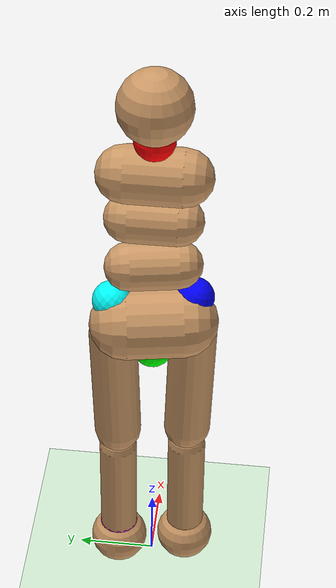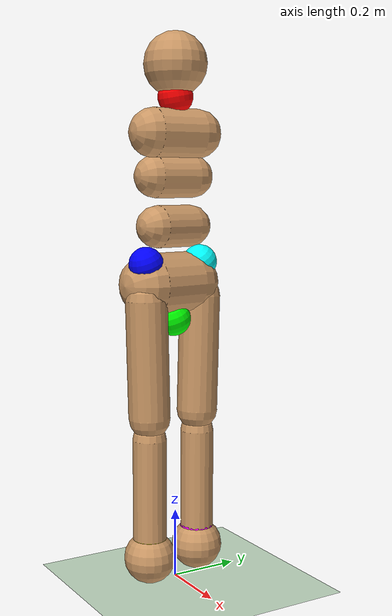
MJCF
<mujoco model="humanoid">
    <compiler angle="degree" inertiafromgeom="true"/>
    <default>
        <joint armature="1" damping="1" limited="true"/>
        <geom conaffinity="1" condim="1" contype="1" margin="0.001" material="geom" rgba="0.8 0.6 .4 1"/>
        <motor ctrllimited="true" ctrlrange="-.4 .4"/>
    </default>
    <size nkey="5" nuser_geom="1"/>
    <visual>
        <map fogend="5" fogstart="3"/>
    </visual>
    <asset>
        <texture builtin="gradient" height="100" rgb1=".4 .5 .6" rgb2="0 0 0" type="skybox" width="100"/>
        <texture builtin="flat" height="1278" mark="cross" markrgb="1 1 1" name="texgeom" random="0.01" rgb1="0.8 0.6 0.4" rgb2="0.8 0.6 0.4" type="cube" width="127"/>
        <texture builtin="checker" height="100" name="texplane" rgb1="0 0 0" rgb2="0.8 0.8 0.8" type="2d" width="100"/>
        <material name="MatPlane" reflectance="0.5" shininess="1" specular="1" texrepeat="60 60" texture="texplane"/>
        <material name="geom" texture="texgeom" texuniform="true"/>
    </asset>
    <worldbody>
        <light cutoff="100" diffuse="1 1 1" dir="-0 0 -1.3" directional="true" exponent="1" pos="0 0 1.3" specular=".1 .1 .1"/>
        <geom condim="3" friction="1 .1 .1" material="MatPlane" name="floor" pos="0 0 0" rgba="0.8 0.9 0.8 1" size="20 20 0.125" type="plane"/>
        <body name="torso" pos="0 0 1.293">
            <camera name="track" mode="trackcom" pos="0 -4 0" xyaxes="1 0 0 0 0 1"/>
            <joint armature="0" damping="0" limited="false" name="root" pos="0 0 0" stiffness="0" type="free"/>
            <geom fromto="0 -.07 0 0 .07 0" name="torso1" size="0.07" type="capsule"/>
            <geom name="head" pos="0 0 .19" size=".09" type="sphere" user="258"/>
            <geom fromto="-.01 -.06 -.12 -.01 .06 -.12" name="uwaist" size="0.06" type="capsule"/>

            <site name="torso_site" pos="0 0 0.1" quat="1 0.1 0 0" size="0.05" type="sphere" rgba="1 0 0 1"/>

            <body name="lwaist" pos="-.01 0 -0.260" quat="1 0 0 0.087">
                <geom fromto="0 -.06 0 0 .06 0" name="lwaist" size="0.06" type="capsule"/>
                <joint armature="0.02" axis="0 0 1" damping="5" name="abdomen_z" pos="0 0 0.065" range="-45 45" stiffness="20" type="hinge"/>
                <joint armature="0.02" axis="0 1 0" damping="5" name="abdomen_y" pos="0 0 0.065" range="-75 30" stiffness="10" type="hinge"/>
                <body name="pelvis" pos="0 0 -0.165" quat="1 0 0 0">
                    <joint armature="0.02" axis="1 0 0" damping="5" name="abdomen_x" pos="0 0 0.1" range="-35 35" stiffness="10" type="hinge"/>
                    <geom fromto="-.02 -.07 0 -.02 .07 0" name="butt" size="0.09" type="capsule"/>

                    <site name="pelvis_site" pos="0 0 -0.1" quat="1 0.2 0 0" size="0.05" type="sphere" rgba="0 1 0 1"/>

                    <body name="right_thigh" pos="0 -0.1 -0.04" quat="1 0 0 0.02">
                        <joint armature="0.01" axis="1 0 0" damping="5" name="right_hip_x" pos="0 0 0" range="-25 5" stiffness="10" type="hinge"/>
                        <joint armature="0.01" axis="0 0 1" damping="5" name="right_hip_z" pos="0 0 0" range="-60 35" stiffness="10" type="hinge"/>
                        <joint armature="0.0080" axis="0 1 0" damping="5" name="right_hip_y" pos="0 0 0" range="-110 20" stiffness="20" type="hinge"/>
                        <geom fromto="0 0 0 0 0.01 -.34" name="right_thigh1" size="0.06" type="capsule"/>
                        <site name="right_thigh_site" pos="0 0 0.1" quat="1 0.2 0 0" size="0.05" type="sphere" rgba="0 0 1 1"/>

                        <body name="right_shin" pos="0 0.01 -0.403" quat="1 0 0 0.042">
                            <joint armature="0.0060" axis="0 -1 0" name="right_knee" pos="0 0 .02" range="-160 -2" type="hinge"/>
                            <geom fromto="0 0 0 0 0 -.3" name="right_shin1" size="0.049" type="capsule"/>
                            <body name="right_foot" pos="0 0 -0.45" quat="1 0 0 0">
                                <geom name="right_foot" pos="0 0 0.1" size="0.075" type="sphere" user="0"/>

                                <site name="right_foot_site" pos="0 0 0.15" quat="1 0 0 0" size="0.05" type="sphere" rgba="1 1 0 1"/>
                            </body>
                        </body>
                    </body>
                    <body name="left_thigh" pos="0 0.1 -0.04" quat="1.000 0 0 0.022">
                        <joint armature="0.01" axis="-1 0 0" damping="5" name="left_hip_x" pos="0 0 0" range="-25 5" stiffness="10" type="hinge"/>
                        <joint armature="0.01" axis="0 0 -1" damping="5" name="left_hip_z" pos="0 0 0" range="-60 35" stiffness="10" type="hinge"/>
                        <joint armature="0.01" axis="0 1 0" damping="5" name="left_hip_y" pos="0 0 0" range="-110 20" stiffness="20" type="hinge"/>
                        <geom fromto="0 0 0 0 -0.01 -.34" name="left_thigh1" size="0.06" type="capsule"/>

                        <site name="left_thigh_site" pos="0 0 0.1" quat="1 0.3 0 0" size="0.05" type="sphere" rgba="0 1 1 1"/>

                        <body name="left_shin" pos="0 -0.01 -0.403" quat="1 0 0 0.032">
                            <joint armature="0.0060" axis="0 -1 0" name="left_knee" pos="0 0 .02" range="-160 -2" stiffness="1" type="hinge"/>
                            <geom fromto="0 0 0 0 0 -.3" name="left_shin1" size="0.049" type="capsule"/>
                            <body name="left_foot" pos="0 0 -0.45" quat="1 0 0 0">
                                <geom name="left_foot" type="sphere" size="0.075" pos="0 0 0.1" user="0" />
                                <site name="left_foot_site" pos="0 0 0.15" quat="1 0.4 0 0" size="0.05" type="sphere" rgba="1 0 1 1"/>
                            </body>
                        </body>
                    </body>
                </body>
            </body>
        </body>
    </worldbody>
    <tendon>
        <fixed name="left_hipknee">
            <joint coef="-1" joint="left_hip_y"/>
            <joint coef="1" joint="left_knee"/>
        </fixed>
        <fixed name="right_hipknee">
            <joint coef="-1" joint="right_hip_y"/>
            <joint coef="1" joint="right_knee"/>
        </fixed>
    </tendon>

    <actuator>
        <motor gear="100" joint="abdomen_y" name="abdomen_y"/>
        <motor gear="100" joint="abdomen_z" name="abdomen_z"/>
        <motor gear="100" joint="abdomen_x" name="abdomen_x"/>
        <motor gear="100" joint="right_hip_x" name="right_hip_x"/>
        <motor gear="100" joint="right_hip_z" name="right_hip_z"/>
        <motor gear="300" joint="right_hip_y" name="right_hip_y"/>
        <motor gear="200" joint="right_knee" name="right_knee"/>
        <motor gear="100" joint="left_hip_x" name="left_hip_x"/>
        <motor gear="100" joint="left_hip_z" name="left_hip_z"/>
        <motor gear="300" joint="left_hip_y" name="left_hip_y"/>
        <motor gear="200" joint="left_knee" name="left_knee"/>
    </actuator>
</mujoco>
